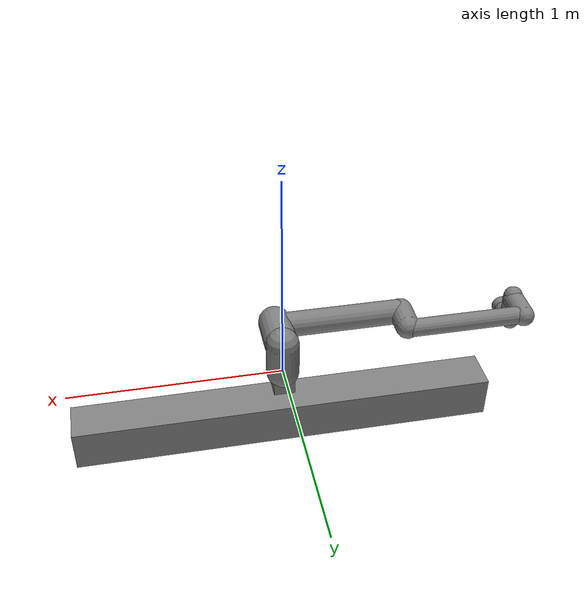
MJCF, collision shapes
<mujoco model="ur10e">
  <compiler angle="radian" meshdir="assets" autolimits="true"/>

  <option integrator="implicit" timestep="0.001">
    <flag multiccd="enable" />
  </option>

  <default>
    <default class="ur10e">
      <material specular="0.5" shininess="0.25"/>
      <joint axis="0 1 0" range="-3.1415 3.1415" armature="0.1"/>
      <position ctrlrange="-3.1415 3.1415"/>
      <general biastype="affine" ctrlrange="-3.1415 3.1415" gainprm="5000" biasprm="0 -5000 -500"/>
      <default class="rail">
        <joint damping="20" armature="10"/>
        <general
           gaintype="fixed"
           gainprm="8000"
           biastype="affine"
           biasprm="0 -8000 -8000"
           ctrlrange="-1 1"
           forcerange="-5000 5000"/>
      </default>
      <default class="size4">
        <joint damping="10"/>
        <general forcerange="-330 330"/>
      </default>
      <default class="size3">
        <joint damping="5"/>
        <general forcerange="-150 150"/>
        <default class="size3_limited">
          <joint range="-3.1415 3.1415"/>
          <general ctrlrange="-3.1415 3.1415"/>
        </default>
      </default>
      <default class="size2">
        <joint damping="2"/>
        <general forcerange="-56 56"/>
      </default>
      <default class="visual">
        <geom type="mesh" contype="0" conaffinity="0" group="2"/>
      </default>
      <default class="collision">
        <geom type="capsule" group="3"/>
        <default class="eef_collision">
          <geom type="cylinder"/>
        </default>
      </default>
      <site size="0.001" rgba="0.5 0.5 0.5 0.3" group="4"/>
    </default>
  </default>

  <asset>
    <material class="ur10e" name="black" rgba="0.033 0.033 0.033 1"/>
    <material class="ur10e" name="jointgray" rgba="0.278 0.278 0.278 1"/>
    <material class="ur10e" name="linkgray" rgba="0.82 0.82 0.82 1"/>
    <material class="ur10e" name="urblue" rgba="0.49 0.678 0.8 1"/>

    <mesh file="base_0.obj"/>
    <mesh file="base_1.obj"/>
    <mesh file="shoulder_0.obj"/>
    <mesh file="shoulder_1.obj"/>
    <mesh file="shoulder_2.obj"/>
    <mesh file="upperarm_0.obj"/>
    <mesh file="upperarm_1.obj"/>
    <mesh file="upperarm_2.obj"/>
    <mesh file="upperarm_3.obj"/>
    <mesh file="forearm_0.obj"/>
    <mesh file="forearm_1.obj"/>
    <mesh file="forearm_2.obj"/>
    <mesh file="forearm_3.obj"/>
    <mesh file="wrist1_0.obj"/>
    <mesh file="wrist1_1.obj"/>
    <mesh file="wrist1_2.obj"/>
    <mesh file="wrist2_0.obj"/>
    <mesh file="wrist2_1.obj"/>
    <mesh file="wrist2_2.obj"/>
    <mesh file="wrist3.obj"/>
  </asset>

  <worldbody>
    <light name="spotlight" mode="targetbodycom" target="wrist_2_link" pos="0 -1 2"/>
    <body name="rail" pos="0 0 -0.25" childclass="ur10e">
      <geom
        type="box"
        size="1 0.1 0.1"
        mass="100"
      />
      <body name="rail_slide" pos="0 0 0.2" childclass="ur10e">
        <geom
          type="box"
          size="0.05 0.05 0.05"
          mass="25"
        />
        <joint name="rail" type="slide" class="rail" axis="1 0 0"/>
        <body name="base" quat="0 0 0 -1" childclass="ur10e">
          <inertial mass="4.0" pos="0 0 0" diaginertia="0.0061063308908 0.0061063308908 0.01125"/>
          <geom mesh="base_0" material="black" class="visual"/>
          <geom mesh="base_1" material="jointgray" class="visual"/>
          <body name="shoulder_link" pos="0 0 0.181">
            <inertial pos="0 0 0" mass="7.778" diaginertia="0.0314743 0.0314743 0.0218756"/>
            <joint name="shoulder_pan_joint" class="size4" axis="0 0 1"/>
            <geom mesh="shoulder_0" material="urblue" class="visual"/>
            <geom mesh="shoulder_1" material="black" class="visual"/>
            <geom mesh="shoulder_2" material="jointgray" class="visual"/>
            <geom class="collision" size="0.078 0.08" pos="0 0 -0.05"/>
            <body name="upper_arm_link" pos="0 0.176 0" quat="1 0 1 0">
              <inertial pos="0 0 0.3065" mass="12.93" diaginertia="0.423074 0.423074 0.0363656"/>
              <joint name="shoulder_lift_joint" class="size4"/>
              <geom mesh="upperarm_0" material="black" class="visual"/>
              <geom mesh="upperarm_1" material="jointgray" class="visual"/>
              <geom mesh="upperarm_2" material="urblue" class="visual"/>
              <geom mesh="upperarm_3" material="linkgray" class="visual"/>
              <geom class="collision" pos="0 -0.05 0" quat="1 1 0 0" size="0.078 0.08"/>
              <geom class="collision" size="0.06 0.3" pos="0 0 0.3"/>
              <body name="forearm_link" pos="0 -0.137 0.613">
                <inertial pos="0 0 0.2855" mass="3.87" diaginertia="0.11059 0.11059 0.0108844"/>
                <joint name="elbow_joint" class="size3_limited"/>
                <geom mesh="forearm_0" material="urblue" class="visual"/>
                <geom mesh="forearm_1" material="black" class="visual"/>
                <geom mesh="forearm_2" material="jointgray" class="visual"/>
                <geom mesh="forearm_3" material="linkgray" class="visual"/>
                <geom class="collision" pos="0 0.08 0" quat="1 1 0 0" size="0.058 0.065"/>
                <geom class="collision" size="0.043 0.28" pos="0 0 0.29"/>
                <body name="wrist_1_link" pos="0 0 0.571" quat="1 0 1 0">
                  <inertial pos="0 0.135 0" quat="0.5 0.5 -0.5 0.5" mass="1.96"
                    diaginertia="0.0055125 0.00510825 0.00510825"/>
                  <joint name="wrist_1_joint" class="size2"/>
                  <geom mesh="wrist1_0" material="black" class="visual"/>
                  <geom mesh="wrist1_1" material="urblue" class="visual"/>
                  <geom mesh="wrist1_2" material="jointgray" class="visual"/>
                  <geom class="collision" pos="0 0.06 0" quat="1 1 0 0" size="0.05 0.07"/>
                  <body name="wrist_2_link" pos="0 0.135 0">
                    <inertial pos="0 0 0.12" quat="0.5 0.5 -0.5 0.5" mass="1.96"
                      diaginertia="0.0055125 0.00510825 0.00510825"/>
                    <joint name="wrist_2_joint" axis="0 0 1" class="size2"/>
                    <geom mesh="wrist2_0" material="black" class="visual"/>
                    <geom mesh="wrist2_1" material="urblue" class="visual"/>
                    <geom mesh="wrist2_2" material="jointgray" class="visual"/>
                    <geom class="collision" size="0.046 0.065" pos="0 0 0.05"/>
                    <geom class="collision" pos="0 0.028 0.12" quat="1 1 0 0" size="0.046 0.043"/>
                    <body name="wrist_3_link" pos="0 0 0.12">
                      <inertial pos="0 0.092 0" quat="0 1 -1 0" mass="0.202"
                        diaginertia="0.000204525 0.000144346 0.000144346"/>
                      <joint name="wrist_3_joint" class="size2"/>
                      <geom material="linkgray" mesh="wrist3" class="visual"/>
                      <geom class="eef_collision" pos="0 0.097 0" quat="1 1 0 0" size="0.046 0.02"/>
                      <site name="attachment_site" pos="0 0.1 0" quat="-1 1 0 0"/>
                    </body>
                  </body>
                </body>
              </body>
            </body>
          </body>
        </body>
      </body>
    </body>
  </worldbody>

  <actuator>
    <general class="rail" name="rail" joint="rail"/>
    <general class="size4" name="shoulder_pan" joint="shoulder_pan_joint"/>
    <general class="size4" name="shoulder_lift" joint="shoulder_lift_joint"/>
    <general class="size3_limited" name="elbow" joint="elbow_joint"/>
    <general class="size2" name="wrist_1" joint="wrist_1_joint"/>
    <general class="size2" name="wrist_2" joint="wrist_2_joint"/>
    <general class="size2" name="wrist_3" joint="wrist_3_joint"/>
  </actuator>
</mujoco>
